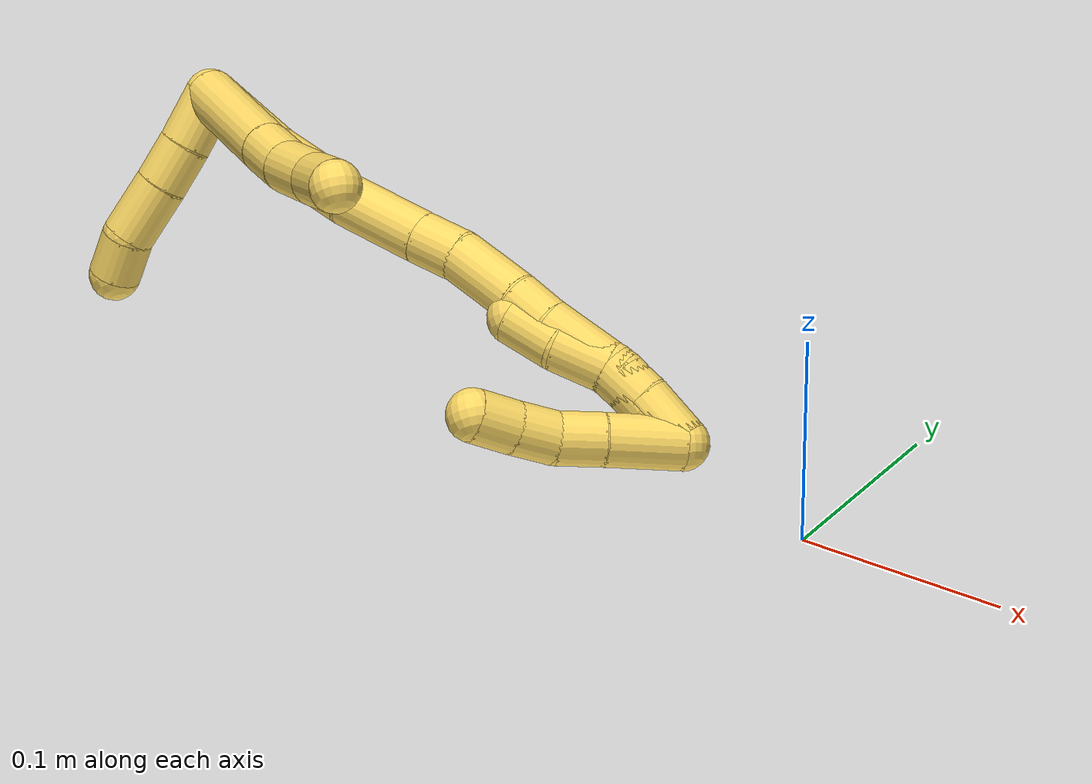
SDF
<sdf version="1.7">
 <world name="default">
  <model name="5">
   <static>0</static>
   <link name="5">
    <collision name="collision-cylinder-e_1_2_8">
     <pose>0.014176 -0.020104 -0.023606 2.43614 0.428814 1.06833</pose>
     <geometry><cylinder><radius>0.0125</radius><length>0.068188</length></cylinder></geometry>
     <surface>
      <friction><ode><mu>1.16</mu><mu2>1.16</mu2><slip1>0</slip1><slip2>0</slip2></ode></friction>
      <contact><ode><kp>1e+06</kp><kd>1</kd><max_vel>0</max_vel><min_depth>0.001</min_depth></ode></contact>
     </surface>
    </collision>
    <visual name="visual-cylinder-e_1_2_8">
     <pose>0.014176 -0.020104 -0.023606 2.43614 0.428814 1.06833</pose>
     <geometry><cylinder><radius>0.0125</radius><length>0.068188</length></cylinder></geometry>
     <material><ambient>1 0.858824 0.4 1</ambient></material>
    </visual>
    <collision name="collision-cylinder-e_2_8_9">
     <pose>0.033557 -0.047026 -0.05529 2.44063 0.45759 1.13438</pose>
     <geometry><cylinder><radius>0.0125</radius><length>0.023564</length></cylinder></geometry>
     <surface>
      <friction><ode><mu>1.16</mu><mu2>1.16</mu2><slip1>0</slip1><slip2>0</slip2></ode></friction>
      <contact><ode><kp>1e+06</kp><kd>1</kd><max_vel>0</max_vel><min_depth>0.001</min_depth></ode></contact>
     </surface>
    </collision>
    <visual name="visual-cylinder-e_2_8_9">
     <pose>0.033557 -0.047026 -0.05529 2.44063 0.45759 1.13438</pose>
     <geometry><cylinder><radius>0.0125</radius><length>0.023564</length></cylinder></geometry>
     <material><ambient>1 0.858824 0.4 1</ambient></material>
    </visual>
    <collision name="collision-cylinder-e_3_9_10">
     <pose>0.046291 -0.063395 -0.071398 2.26983 0.542852 1.07716</pose>
     <geometry><cylinder><radius>0.0125</radius><length>0.029149</length></cylinder></geometry>
     <surface>
      <friction><ode><mu>1.16</mu><mu2>1.16</mu2><slip1>0</slip1><slip2>0</slip2></ode></friction>
      <contact><ode><kp>1e+06</kp><kd>1</kd><max_vel>0</max_vel><min_depth>0.001</min_depth></ode></contact>
     </surface>
    </collision>
    <visual name="visual-cylinder-e_3_9_10">
     <pose>0.046291 -0.063395 -0.071398 2.26983 0.542852 1.07716</pose>
     <geometry><cylinder><radius>0.0125</radius><length>0.029149</length></cylinder></geometry>
     <material><ambient>1 0.858824 0.4 1</ambient></material>
    </visual>
    <collision name="collision-cylinder-e_4_10_6">
     <pose>0.059703 -0.084433 -0.086149 2.10029 0.416236 0.705711</pose>
     <geometry><cylinder><radius>0.0125</radius><length>0.029099</length></cylinder></geometry>
     <surface>
      <friction><ode><mu>1.16</mu><mu2>1.16</mu2><slip1>0</slip1><slip2>0</slip2></ode></friction>
      <contact><ode><kp>1e+06</kp><kd>1</kd><max_vel>0</max_vel><min_depth>0.001</min_depth></ode></contact>
     </surface>
    </collision>
    <visual name="visual-cylinder-e_4_10_6">
     <pose>0.059703 -0.084433 -0.086149 2.10029 0.416236 0.705711</pose>
     <geometry><cylinder><radius>0.0125</radius><length>0.029099</length></cylinder></geometry>
     <material><ambient>1 0.858824 0.4 1</ambient></material>
    </visual>
    <collision name="collision-cylinder-e_1_2_11">
     <pose>-0.009145 0.00303 -0.008924 -2.81428 -0.77032 2.36798</pose>
     <geometry><cylinder><radius>0.0125</radius><length>0.026264</length></cylinder></geometry>
     <surface>
      <friction><ode><mu>1.16</mu><mu2>1.16</mu2><slip1>0</slip1><slip2>0</slip2></ode></friction>
      <contact><ode><kp>1e+06</kp><kd>1</kd><max_vel>0</max_vel><min_depth>0.001</min_depth></ode></contact>
     </surface>
    </collision>
    <visual name="visual-cylinder-e_1_2_11">
     <pose>-0.009145 0.00303 -0.008924 -2.81428 -0.77032 2.36798</pose>
     <geometry><cylinder><radius>0.0125</radius><length>0.026264</length></cylinder></geometry>
     <material><ambient>1 0.858824 0.4 1</ambient></material>
    </visual>
    <collision name="collision-cylinder-e_2_11_12">
     <pose>-0.026451 0.009001 -0.024839 -2.7434 -0.822068 2.2745</pose>
     <geometry><cylinder><radius>0.0125</radius><length>0.022282</length></cylinder></geometry>
     <surface>
      <friction><ode><mu>1.16</mu><mu2>1.16</mu2><slip1>0</slip1><slip2>0</slip2></ode></friction>
      <contact><ode><kp>1e+06</kp><kd>1</kd><max_vel>0</max_vel><min_depth>0.001</min_depth></ode></contact>
     </surface>
    </collision>
    <visual name="visual-cylinder-e_2_11_12">
     <pose>-0.026451 0.009001 -0.024839 -2.7434 -0.822068 2.2745</pose>
     <geometry><cylinder><radius>0.0125</radius><length>0.022282</length></cylinder></geometry>
     <material><ambient>1 0.858824 0.4 1</ambient></material>
    </visual>
    <collision name="collision-cylinder-e_3_12_13">
     <pose>-0.046041 0.016363 -0.04064 -2.67644 -0.859075 2.18712</pose>
     <geometry><cylinder><radius>0.0125</radius><length>0.030185</length></cylinder></geometry>
     <surface>
      <friction><ode><mu>1.16</mu><mu2>1.16</mu2><slip1>0</slip1><slip2>0</slip2></ode></friction>
      <contact><ode><kp>1e+06</kp><kd>1</kd><max_vel>0</max_vel><min_depth>0.001</min_depth></ode></contact>
     </surface>
    </collision>
    <visual name="visual-cylinder-e_3_12_13">
     <pose>-0.046041 0.016363 -0.04064 -2.67644 -0.859075 2.18712</pose>
     <geometry><cylinder><radius>0.0125</radius><length>0.030185</length></cylinder></geometry>
     <material><ambient>1 0.858824 0.4 1</ambient></material>
    </visual>
    <collision name="collision-cylinder-e_4_13_5">
     <pose>-0.063731 0.026461 -0.055904 -2.4202 -0.629585 1.42429</pose>
     <geometry><cylinder><radius>0.0125</radius><length>0.021269</length></cylinder></geometry>
     <surface>
      <friction><ode><mu>1.16</mu><mu2>1.16</mu2><slip1>0</slip1><slip2>0</slip2></ode></friction>
      <contact><ode><kp>1e+06</kp><kd>1</kd><max_vel>0</max_vel><min_depth>0.001</min_depth></ode></contact>
     </surface>
    </collision>
    <visual name="visual-cylinder-e_4_13_5">
     <pose>-0.063731 0.026461 -0.055904 -2.4202 -0.629585 1.42429</pose>
     <geometry><cylinder><radius>0.0125</radius><length>0.021269</length></cylinder></geometry>
     <material><ambient>1 0.858824 0.4 1</ambient></material>
    </visual>
    <collision name="collision-cylinder-e_1_2_14">
     <pose>0.013061 -0.004403 -0.01944 2.91886 0.580045 2.42454</pose>
     <geometry><cylinder><radius>0.0125</radius><length>0.047661</length></cylinder></geometry>
     <surface>
      <friction><ode><mu>1.16</mu><mu2>1.16</mu2><slip1>0</slip1><slip2>0</slip2></ode></friction>
      <contact><ode><kp>1e+06</kp><kd>1</kd><max_vel>0</max_vel><min_depth>0.001</min_depth></ode></contact>
     </surface>
    </collision>
    <visual name="visual-cylinder-e_1_2_14">
     <pose>0.013061 -0.004403 -0.01944 2.91886 0.580045 2.42454</pose>
     <geometry><cylinder><radius>0.0125</radius><length>0.047661</length></cylinder></geometry>
     <material><ambient>1 0.858824 0.4 1</ambient></material>
    </visual>
    <collision name="collision-cylinder-e_2_14_15">
     <pose>0.041253 -0.012908 -0.056558 2.9136 0.695039 2.5293</pose>
     <geometry><cylinder><radius>0.0125</radius><length>0.047255</length></cylinder></geometry>
     <surface>
      <friction><ode><mu>1.16</mu><mu2>1.16</mu2><slip1>0</slip1><slip2>0</slip2></ode></friction>
      <contact><ode><kp>1e+06</kp><kd>1</kd><max_vel>0</max_vel><min_depth>0.001</min_depth></ode></contact>
     </surface>
    </collision>
    <visual name="visual-cylinder-e_2_14_15">
     <pose>0.041253 -0.012908 -0.056558 2.9136 0.695039 2.5293</pose>
     <geometry><cylinder><radius>0.0125</radius><length>0.047255</length></cylinder></geometry>
     <material><ambient>1 0.858824 0.4 1</ambient></material>
    </visual>
    <collision name="collision-cylinder-e_3_15_16">
     <pose>0.071836 -0.019881 -0.088862 2.94777 0.803364 2.69161</pose>
     <geometry><cylinder><radius>0.0125</radius><length>0.042941</length></cylinder></geometry>
     <surface>
      <friction><ode><mu>1.16</mu><mu2>1.16</mu2><slip1>0</slip1><slip2>0</slip2></ode></friction>
      <contact><ode><kp>1e+06</kp><kd>1</kd><max_vel>0</max_vel><min_depth>0.001</min_depth></ode></contact>
     </surface>
    </collision>
    <visual name="visual-cylinder-e_3_15_16">
     <pose>0.071836 -0.019881 -0.088862 2.94777 0.803364 2.69161</pose>
     <geometry><cylinder><radius>0.0125</radius><length>0.042941</length></cylinder></geometry>
     <material><ambient>1 0.858824 0.4 1</ambient></material>
    </visual>
    <collision name="collision-cylinder-e_4_16_17">
     <pose>0.095475 -0.024247 -0.110838 2.94085 0.829255 2.69171</pose>
     <geometry><cylinder><radius>0.0125</radius><length>0.022203</length></cylinder></geometry>
     <surface>
      <friction><ode><mu>1.16</mu><mu2>1.16</mu2><slip1>0</slip1><slip2>0</slip2></ode></friction>
      <contact><ode><kp>1e+06</kp><kd>1</kd><max_vel>0</max_vel><min_depth>0.001</min_depth></ode></contact>
     </surface>
    </collision>
    <visual name="visual-cylinder-e_4_16_17">
     <pose>0.095475 -0.024247 -0.110838 2.94085 0.829255 2.69171</pose>
     <geometry><cylinder><radius>0.0125</radius><length>0.022203</length></cylinder></geometry>
     <material><ambient>1 0.858824 0.4 1</ambient></material>
    </visual>
    <collision name="collision-cylinder-e_5_17_18">
     <pose>0.114435 -0.028535 -0.132164 2.94442 0.647193 2.56803</pose>
     <geometry><cylinder><radius>0.0125</radius><length>0.035735</length></cylinder></geometry>
     <surface>
      <friction><ode><mu>1.16</mu><mu2>1.16</mu2><slip1>0</slip1><slip2>0</slip2></ode></friction>
      <contact><ode><kp>1e+06</kp><kd>1</kd><max_vel>0</max_vel><min_depth>0.001</min_depth></ode></contact>
     </surface>
    </collision>
    <visual name="visual-cylinder-e_5_17_18">
     <pose>0.114435 -0.028535 -0.132164 2.94442 0.647193 2.56803</pose>
     <geometry><cylinder><radius>0.0125</radius><length>0.035735</length></cylinder></geometry>
     <material><ambient>1 0.858824 0.4 1</ambient></material>
    </visual>
    <collision name="collision-cylinder-e_6_18_19">
     <pose>0.13107 -0.031955 -0.154418 3.06584 0.614899 2.90402</pose>
     <geometry><cylinder><radius>0.0125</radius><length>0.020322</length></cylinder></geometry>
     <surface>
      <friction><ode><mu>1.16</mu><mu2>1.16</mu2><slip1>0</slip1><slip2>0</slip2></ode></friction>
      <contact><ode><kp>1e+06</kp><kd>1</kd><max_vel>0</max_vel><min_depth>0.001</min_depth></ode></contact>
     </surface>
    </collision>
    <visual name="visual-cylinder-e_6_18_19">
     <pose>0.13107 -0.031955 -0.154418 3.06584 0.614899 2.90402</pose>
     <geometry><cylinder><radius>0.0125</radius><length>0.020322</length></cylinder></geometry>
     <material><ambient>1 0.858824 0.4 1</ambient></material>
    </visual>
    <collision name="collision-cylinder-e_7_19_20">
     <pose>0.150383 -0.031416 -0.178798 -3.06924 0.694608 -2.94227</pose>
     <geometry><cylinder><radius>0.0125</radius><length>0.04203</length></cylinder></geometry>
     <surface>
      <friction><ode><mu>1.16</mu><mu2>1.16</mu2><slip1>0</slip1><slip2>0</slip2></ode></friction>
      <contact><ode><kp>1e+06</kp><kd>1</kd><max_vel>0</max_vel><min_depth>0.001</min_depth></ode></contact>
     </surface>
    </collision>
    <visual name="visual-cylinder-e_7_19_20">
     <pose>0.150383 -0.031416 -0.178798 -3.06924 0.694608 -2.94227</pose>
     <geometry><cylinder><radius>0.0125</radius><length>0.04203</length></cylinder></geometry>
     <material><ambient>1 0.858824 0.4 1</ambient></material>
    </visual>
    <collision name="collision-cylinder-e_8_20_21">
     <pose>0.168588 -0.02937 -0.203703 -3.04203 0.493073 -2.75068</pose>
     <geometry><cylinder><radius>0.0125</radius><length>0.020083</length></cylinder></geometry>
     <surface>
      <friction><ode><mu>1.16</mu><mu2>1.16</mu2><slip1>0</slip1><slip2>0</slip2></ode></friction>
      <contact><ode><kp>1e+06</kp><kd>1</kd><max_vel>0</max_vel><min_depth>0.001</min_depth></ode></contact>
     </surface>
    </collision>
    <visual name="visual-cylinder-e_8_20_21">
     <pose>0.168588 -0.02937 -0.203703 -3.04203 0.493073 -2.75068</pose>
     <geometry><cylinder><radius>0.0125</radius><length>0.020083</length></cylinder></geometry>
     <material><ambient>1 0.858824 0.4 1</ambient></material>
    </visual>
    <collision name="collision-cylinder-e_9_21_1">
     <pose>0.178498 -0.02754 -0.222042 -3.04228 0.493665 -2.75214</pose>
     <geometry><cylinder><radius>0.0125</radius><length>0.021769</length></cylinder></geometry>
     <surface>
      <friction><ode><mu>1.16</mu><mu2>1.16</mu2><slip1>0</slip1><slip2>0</slip2></ode></friction>
      <contact><ode><kp>1e+06</kp><kd>1</kd><max_vel>0</max_vel><min_depth>0.001</min_depth></ode></contact>
     </surface>
    </collision>
    <visual name="visual-cylinder-e_9_21_1">
     <pose>0.178498 -0.02754 -0.222042 -3.04228 0.493665 -2.75214</pose>
     <geometry><cylinder><radius>0.0125</radius><length>0.021769</length></cylinder></geometry>
     <material><ambient>1 0.858824 0.4 1</ambient></material>
    </visual>
    <collision name="collision-cylinder-e_1_1_22">
     <pose>0.177606 -0.027884 -0.219689 0.108438 -0.468253 -0.025886</pose>
     <geometry><cylinder><radius>0.0125</radius><length>0.026808</length></cylinder></geometry>
     <surface>
      <friction><ode><mu>1.16</mu><mu2>1.16</mu2><slip1>0</slip1><slip2>0</slip2></ode></friction>
      <contact><ode><kp>1e+06</kp><kd>1</kd><max_vel>0</max_vel><min_depth>0.001</min_depth></ode></contact>
     </surface>
    </collision>
    <visual name="visual-cylinder-e_1_1_22">
     <pose>0.177606 -0.027884 -0.219689 0.108438 -0.468253 -0.025886</pose>
     <geometry><cylinder><radius>0.0125</radius><length>0.026808</length></cylinder></geometry>
     <material><ambient>1 0.858824 0.4 1</ambient></material>
    </visual>
    <collision name="collision-cylinder-e_2_22_23">
     <pose>0.165677 -0.029994 -0.198689 0.089272 -0.571343 -0.026236</pose>
     <geometry><cylinder><radius>0.0125</radius><length>0.021745</length></cylinder></geometry>
     <surface>
      <friction><ode><mu>1.16</mu><mu2>1.16</mu2><slip1>0</slip1><slip2>0</slip2></ode></friction>
      <contact><ode><kp>1e+06</kp><kd>1</kd><max_vel>0</max_vel><min_depth>0.001</min_depth></ode></contact>
     </surface>
    </collision>
    <visual name="visual-cylinder-e_2_22_23">
     <pose>0.165677 -0.029994 -0.198689 0.089272 -0.571343 -0.026236</pose>
     <geometry><cylinder><radius>0.0125</radius><length>0.021745</length></cylinder></geometry>
     <material><ambient>1 0.858824 0.4 1</ambient></material>
    </visual>
    <collision name="collision-cylinder-e_3_23_24">
     <pose>0.149471 -0.031967 -0.181438 0.141284 -0.898337 -0.06819</pose>
     <geometry><cylinder><radius>0.0125</radius><length>0.026402</length></cylinder></geometry>
     <surface>
      <friction><ode><mu>1.16</mu><mu2>1.16</mu2><slip1>0</slip1><slip2>0</slip2></ode></friction>
      <contact><ode><kp>1e+06</kp><kd>1</kd><max_vel>0</max_vel><min_depth>0.001</min_depth></ode></contact>
     </surface>
    </collision>
    <visual name="visual-cylinder-e_3_23_24">
     <pose>0.149471 -0.031967 -0.181438 0.141284 -0.898337 -0.06819</pose>
     <geometry><cylinder><radius>0.0125</radius><length>0.026402</length></cylinder></geometry>
     <material><ambient>1 0.858824 0.4 1</ambient></material>
    </visual>
    <collision name="collision-cylinder-e_4_24_4">
     <pose>0.130539 -0.032539 -0.164218 -0.064499 -0.757542 0.025677</pose>
     <geometry><cylinder><radius>0.0125</radius><length>0.025044</length></cylinder></geometry>
     <surface>
      <friction><ode><mu>1.16</mu><mu2>1.16</mu2><slip1>0</slip1><slip2>0</slip2></ode></friction>
      <contact><ode><kp>1e+06</kp><kd>1</kd><max_vel>0</max_vel><min_depth>0.001</min_depth></ode></contact>
     </surface>
    </collision>
    <visual name="visual-cylinder-e_4_24_4">
     <pose>0.130539 -0.032539 -0.164218 -0.064499 -0.757542 0.025677</pose>
     <geometry><cylinder><radius>0.0125</radius><length>0.025044</length></cylinder></geometry>
     <material><ambient>1 0.858824 0.4 1</ambient></material>
    </visual>
    <collision name="collision-cylinder-e_1_1_25">
     <pose>0.167365 -0.034492 -0.228054 1.15104 -1.08254 -0.743751</pose>
     <geometry><cylinder><radius>0.0125</radius><length>0.036893</length></cylinder></geometry>
     <surface>
      <friction><ode><mu>1.16</mu><mu2>1.16</mu2><slip1>0</slip1><slip2>0</slip2></ode></friction>
      <contact><ode><kp>1e+06</kp><kd>1</kd><max_vel>0</max_vel><min_depth>0.001</min_depth></ode></contact>
     </surface>
    </collision>
    <visual name="visual-cylinder-e_1_1_25">
     <pose>0.167365 -0.034492 -0.228054 1.15104 -1.08254 -0.743751</pose>
     <geometry><cylinder><radius>0.0125</radius><length>0.036893</length></cylinder></geometry>
     <material><ambient>1 0.858824 0.4 1</ambient></material>
    </visual>
    <collision name="collision-cylinder-e_2_25_26">
     <pose>0.140976 -0.046526 -0.222378 1.09126 -1.1386 -0.741179</pose>
     <geometry><cylinder><radius>0.0125</radius><length>0.02224</length></cylinder></geometry>
     <surface>
      <friction><ode><mu>1.16</mu><mu2>1.16</mu2><slip1>0</slip1><slip2>0</slip2></ode></friction>
      <contact><ode><kp>1e+06</kp><kd>1</kd><max_vel>0</max_vel><min_depth>0.001</min_depth></ode></contact>
     </surface>
    </collision>
    <visual name="visual-cylinder-e_2_25_26">
     <pose>0.140976 -0.046526 -0.222378 1.09126 -1.1386 -0.741179</pose>
     <geometry><cylinder><radius>0.0125</radius><length>0.02224</length></cylinder></geometry>
     <material><ambient>1 0.858824 0.4 1</ambient></material>
    </visual>
    <collision name="collision-cylinder-e_3_26_27">
     <pose>0.123096 -0.0563 -0.216937 1.04253 -0.872497 -0.523163</pose>
     <geometry><cylinder><radius>0.0125</radius><length>0.020322</length></cylinder></geometry>
     <surface>
      <friction><ode><mu>1.16</mu><mu2>1.16</mu2><slip1>0</slip1><slip2>0</slip2></ode></friction>
      <contact><ode><kp>1e+06</kp><kd>1</kd><max_vel>0</max_vel><min_depth>0.001</min_depth></ode></contact>
     </surface>
    </collision>
    <visual name="visual-cylinder-e_3_26_27">
     <pose>0.123096 -0.0563 -0.216937 1.04253 -0.872497 -0.523163</pose>
     <geometry><cylinder><radius>0.0125</radius><length>0.020322</length></cylinder></geometry>
     <material><ambient>1 0.858824 0.4 1</ambient></material>
    </visual>
    <collision name="collision-cylinder-e_4_27_3">
     <pose>0.107915 -0.068182 -0.2102 1.06639 -0.804114 -0.491787</pose>
     <geometry><cylinder><radius>0.0125</radius><length>0.020545</length></cylinder></geometry>
     <surface>
      <friction><ode><mu>1.16</mu><mu2>1.16</mu2><slip1>0</slip1><slip2>0</slip2></ode></friction>
      <contact><ode><kp>1e+06</kp><kd>1</kd><max_vel>0</max_vel><min_depth>0.001</min_depth></ode></contact>
     </surface>
    </collision>
    <visual name="visual-cylinder-e_4_27_3">
     <pose>0.107915 -0.068182 -0.2102 1.06639 -0.804114 -0.491787</pose>
     <geometry><cylinder><radius>0.0125</radius><length>0.020545</length></cylinder></geometry>
     <material><ambient>1 0.858824 0.4 1</ambient></material>
    </visual>
    <collision name="collision-sphere-3">
     <pose>0.100517 -0.074421 -0.206756 0 -0 0</pose>
     <geometry><sphere><radius>0.0125</radius></sphere></geometry>
     <surface>
      <friction><ode><mu>1.16</mu><mu2>1.16</mu2><slip1>0</slip1><slip2>0</slip2></ode></friction>
      <contact><ode><kp>1e+06</kp><kd>1</kd><max_vel>0</max_vel><min_depth>0.001</min_depth></ode></contact>
     </surface>
    </collision>
    <visual name="visual-sphere-3">
     <pose>0.100517 -0.074421 -0.206756 0 -0 0</pose>
     <geometry><sphere><radius>0.0125</radius></sphere></geometry>
     <material><ambient>1 0.858824 0.4 1</ambient></material>
    </visual>
    <collision name="collision-sphere-27">
     <pose>0.115313 -0.061943 -0.213644 0 -0 0</pose>
     <geometry><sphere><radius>0.0125</radius></sphere></geometry>
     <surface>
      <friction><ode><mu>1.16</mu><mu2>1.16</mu2><slip1>0</slip1><slip2>0</slip2></ode></friction>
      <contact><ode><kp>1e+06</kp><kd>1</kd><max_vel>0</max_vel><min_depth>0.001</min_depth></ode></contact>
     </surface>
    </collision>
    <visual name="visual-sphere-27">
     <pose>0.115313 -0.061943 -0.213644 0 -0 0</pose>
     <geometry><sphere><radius>0.0125</radius></sphere></geometry>
     <material><ambient>1 0.858824 0.4 1</ambient></material>
    </visual>
    <collision name="collision-sphere-26">
     <pose>0.130879 -0.050658 -0.220229 0 -0 0</pose>
     <geometry><sphere><radius>0.0125</radius></sphere></geometry>
     <surface>
      <friction><ode><mu>1.16</mu><mu2>1.16</mu2><slip1>0</slip1><slip2>0</slip2></ode></friction>
      <contact><ode><kp>1e+06</kp><kd>1</kd><max_vel>0</max_vel><min_depth>0.001</min_depth></ode></contact>
     </surface>
    </collision>
    <visual name="visual-sphere-26">
     <pose>0.130879 -0.050658 -0.220229 0 -0 0</pose>
     <geometry><sphere><radius>0.0125</radius></sphere></geometry>
     <material><ambient>1 0.858824 0.4 1</ambient></material>
    </visual>
    <collision name="collision-sphere-25">
     <pose>0.151074 -0.042393 -0.224527 0 -0 0</pose>
     <geometry><sphere><radius>0.0125</radius></sphere></geometry>
     <surface>
      <friction><ode><mu>1.16</mu><mu2>1.16</mu2><slip1>0</slip1><slip2>0</slip2></ode></friction>
      <contact><ode><kp>1e+06</kp><kd>1</kd><max_vel>0</max_vel><min_depth>0.001</min_depth></ode></contact>
     </surface>
    </collision>
    <visual name="visual-sphere-25">
     <pose>0.151074 -0.042393 -0.224527 0 -0 0</pose>
     <geometry><sphere><radius>0.0125</radius></sphere></geometry>
     <material><ambient>1 0.858824 0.4 1</ambient></material>
    </visual>
    <collision name="collision-sphere-4">
     <pose>0.121934 -0.031953 -0.15514 0 -0 0</pose>
     <geometry><sphere><radius>0.0125</radius></sphere></geometry>
     <surface>
      <friction><ode><mu>1.16</mu><mu2>1.16</mu2><slip1>0</slip1><slip2>0</slip2></ode></friction>
      <contact><ode><kp>1e+06</kp><kd>1</kd><max_vel>0</max_vel><min_depth>0.001</min_depth></ode></contact>
     </surface>
    </collision>
    <visual name="visual-sphere-4">
     <pose>0.121934 -0.031953 -0.15514 0 -0 0</pose>
     <geometry><sphere><radius>0.0125</radius></sphere></geometry>
     <material><ambient>1 0.858824 0.4 1</ambient></material>
    </visual>
    <collision name="collision-sphere-24">
     <pose>0.139143 -0.033125 -0.173297 0 -0 0</pose>
     <geometry><sphere><radius>0.0125</radius></sphere></geometry>
     <surface>
      <friction><ode><mu>1.16</mu><mu2>1.16</mu2><slip1>0</slip1><slip2>0</slip2></ode></friction>
      <contact><ode><kp>1e+06</kp><kd>1</kd><max_vel>0</max_vel><min_depth>0.001</min_depth></ode></contact>
     </surface>
    </collision>
    <visual name="visual-sphere-24">
     <pose>0.139143 -0.033125 -0.173297 0 -0 0</pose>
     <geometry><sphere><radius>0.0125</radius></sphere></geometry>
     <material><ambient>1 0.858824 0.4 1</ambient></material>
    </visual>
    <collision name="collision-sphere-23">
     <pose>0.159798 -0.030809 -0.18958 0 -0 0</pose>
     <geometry><sphere><radius>0.0125</radius></sphere></geometry>
     <surface>
      <friction><ode><mu>1.16</mu><mu2>1.16</mu2><slip1>0</slip1><slip2>0</slip2></ode></friction>
      <contact><ode><kp>1e+06</kp><kd>1</kd><max_vel>0</max_vel><min_depth>0.001</min_depth></ode></contact>
     </surface>
    </collision>
    <visual name="visual-sphere-23">
     <pose>0.159798 -0.030809 -0.18958 0 -0 0</pose>
     <geometry><sphere><radius>0.0125</radius></sphere></geometry>
     <material><ambient>1 0.858824 0.4 1</ambient></material>
    </visual>
    <collision name="collision-sphere-22">
     <pose>0.171557 -0.029179 -0.207798 0 -0 0</pose>
     <geometry><sphere><radius>0.0125</radius></sphere></geometry>
     <surface>
      <friction><ode><mu>1.16</mu><mu2>1.16</mu2><slip1>0</slip1><slip2>0</slip2></ode></friction>
      <contact><ode><kp>1e+06</kp><kd>1</kd><max_vel>0</max_vel><min_depth>0.001</min_depth></ode></contact>
     </surface>
    </collision>
    <visual name="visual-sphere-22">
     <pose>0.171557 -0.029179 -0.207798 0 -0 0</pose>
     <geometry><sphere><radius>0.0125</radius></sphere></geometry>
     <material><ambient>1 0.858824 0.4 1</ambient></material>
    </visual>
    <collision name="collision-sphere-1">
     <pose>0.183656 -0.02659 -0.23158 0 -0 0</pose>
     <geometry><sphere><radius>0.0125</radius></sphere></geometry>
     <surface>
      <friction><ode><mu>1.16</mu><mu2>1.16</mu2><slip1>0</slip1><slip2>0</slip2></ode></friction>
      <contact><ode><kp>1e+06</kp><kd>1</kd><max_vel>0</max_vel><min_depth>0.001</min_depth></ode></contact>
     </surface>
    </collision>
    <visual name="visual-sphere-1">
     <pose>0.183656 -0.02659 -0.23158 0 -0 0</pose>
     <geometry><sphere><radius>0.0125</radius></sphere></geometry>
     <material><ambient>1 0.858824 0.4 1</ambient></material>
    </visual>
    <collision name="collision-sphere-21">
     <pose>0.17334 -0.02849 -0.212504 0 -0 0</pose>
     <geometry><sphere><radius>0.0125</radius></sphere></geometry>
     <surface>
      <friction><ode><mu>1.16</mu><mu2>1.16</mu2><slip1>0</slip1><slip2>0</slip2></ode></friction>
      <contact><ode><kp>1e+06</kp><kd>1</kd><max_vel>0</max_vel><min_depth>0.001</min_depth></ode></contact>
     </surface>
    </collision>
    <visual name="visual-sphere-21">
     <pose>0.17334 -0.02849 -0.212504 0 -0 0</pose>
     <geometry><sphere><radius>0.0125</radius></sphere></geometry>
     <material><ambient>1 0.858824 0.4 1</ambient></material>
    </visual>
    <collision name="collision-sphere-11">
     <pose>-0.01829 0.00606 -0.017849 0 -0 0</pose>
     <geometry><sphere><radius>0.0125</radius></sphere></geometry>
     <surface>
      <friction><ode><mu>1.16</mu><mu2>1.16</mu2><slip1>0</slip1><slip2>0</slip2></ode></friction>
      <contact><ode><kp>1e+06</kp><kd>1</kd><max_vel>0</max_vel><min_depth>0.001</min_depth></ode></contact>
     </surface>
    </collision>
    <visual name="visual-sphere-11">
     <pose>-0.01829 0.00606 -0.017849 0 -0 0</pose>
     <geometry><sphere><radius>0.0125</radius></sphere></geometry>
     <material><ambient>1 0.858824 0.4 1</ambient></material>
    </visual>
    <collision name="collision-sphere-6">
     <pose>0.065585 -0.095918 -0.092871 0 -0 0</pose>
     <geometry><sphere><radius>0.0125</radius></sphere></geometry>
     <surface>
      <friction><ode><mu>1.16</mu><mu2>1.16</mu2><slip1>0</slip1><slip2>0</slip2></ode></friction>
      <contact><ode><kp>1e+06</kp><kd>1</kd><max_vel>0</max_vel><min_depth>0.001</min_depth></ode></contact>
     </surface>
    </collision>
    <visual name="visual-sphere-6">
     <pose>0.065585 -0.095918 -0.092871 0 -0 0</pose>
     <geometry><sphere><radius>0.0125</radius></sphere></geometry>
     <material><ambient>1 0.858824 0.4 1</ambient></material>
    </visual>
    <collision name="collision-sphere-10">
     <pose>0.05382 -0.072947 -0.079428 0 -0 0</pose>
     <geometry><sphere><radius>0.0125</radius></sphere></geometry>
     <surface>
      <friction><ode><mu>1.16</mu><mu2>1.16</mu2><slip1>0</slip1><slip2>0</slip2></ode></friction>
      <contact><ode><kp>1e+06</kp><kd>1</kd><max_vel>0</max_vel><min_depth>0.001</min_depth></ode></contact>
     </surface>
    </collision>
    <visual name="visual-sphere-10">
     <pose>0.05382 -0.072947 -0.079428 0 -0 0</pose>
     <geometry><sphere><radius>0.0125</radius></sphere></geometry>
     <material><ambient>1 0.858824 0.4 1</ambient></material>
    </visual>
    <collision name="collision-sphere-9">
     <pose>0.038762 -0.053843 -0.063368 0 -0 0</pose>
     <geometry><sphere><radius>0.0125</radius></sphere></geometry>
     <surface>
      <friction><ode><mu>1.16</mu><mu2>1.16</mu2><slip1>0</slip1><slip2>0</slip2></ode></friction>
      <contact><ode><kp>1e+06</kp><kd>1</kd><max_vel>0</max_vel><min_depth>0.001</min_depth></ode></contact>
     </surface>
    </collision>
    <visual name="visual-sphere-9">
     <pose>0.038762 -0.053843 -0.063368 0 -0 0</pose>
     <geometry><sphere><radius>0.0125</radius></sphere></geometry>
     <material><ambient>1 0.858824 0.4 1</ambient></material>
    </visual>
    <collision name="collision-sphere-2">
     <geometry><sphere><radius>0.0125</radius></sphere></geometry>
     <surface>
      <friction><ode><mu>1.16</mu><mu2>1.16</mu2><slip1>0</slip1><slip2>0</slip2></ode></friction>
      <contact><ode><kp>1e+06</kp><kd>1</kd><max_vel>0</max_vel><min_depth>0.001</min_depth></ode></contact>
     </surface>
    </collision>
    <visual name="visual-sphere-2">
     <geometry><sphere><radius>0.0125</radius></sphere></geometry>
     <material><ambient>1 0.858824 0.4 1</ambient></material>
    </visual>
    <collision name="collision-sphere-19">
     <pose>0.136932 -0.032583 -0.162694 0 -0 0</pose>
     <geometry><sphere><radius>0.0125</radius></sphere></geometry>
     <surface>
      <friction><ode><mu>1.16</mu><mu2>1.16</mu2><slip1>0</slip1><slip2>0</slip2></ode></friction>
      <contact><ode><kp>1e+06</kp><kd>1</kd><max_vel>0</max_vel><min_depth>0.001</min_depth></ode></contact>
     </surface>
    </collision>
    <visual name="visual-sphere-19">
     <pose>0.136932 -0.032583 -0.162694 0 -0 0</pose>
     <geometry><sphere><radius>0.0125</radius></sphere></geometry>
     <material><ambient>1 0.858824 0.4 1</ambient></material>
    </visual>
    <collision name="collision-sphere-8">
     <pose>0.028352 -0.040209 -0.047213 0 -0 0</pose>
     <geometry><sphere><radius>0.0125</radius></sphere></geometry>
     <surface>
      <friction><ode><mu>1.16</mu><mu2>1.16</mu2><slip1>0</slip1><slip2>0</slip2></ode></friction>
      <contact><ode><kp>1e+06</kp><kd>1</kd><max_vel>0</max_vel><min_depth>0.001</min_depth></ode></contact>
     </surface>
    </collision>
    <visual name="visual-sphere-8">
     <pose>0.028352 -0.040209 -0.047213 0 -0 0</pose>
     <geometry><sphere><radius>0.0125</radius></sphere></geometry>
     <material><ambient>1 0.858824 0.4 1</ambient></material>
    </visual>
    <collision name="collision-sphere-12">
     <pose>-0.034612 0.011941 -0.03183 0 -0 0</pose>
     <geometry><sphere><radius>0.0125</radius></sphere></geometry>
     <surface>
      <friction><ode><mu>1.16</mu><mu2>1.16</mu2><slip1>0</slip1><slip2>0</slip2></ode></friction>
      <contact><ode><kp>1e+06</kp><kd>1</kd><max_vel>0</max_vel><min_depth>0.001</min_depth></ode></contact>
     </surface>
    </collision>
    <visual name="visual-sphere-12">
     <pose>-0.034612 0.011941 -0.03183 0 -0 0</pose>
     <geometry><sphere><radius>0.0125</radius></sphere></geometry>
     <material><ambient>1 0.858824 0.4 1</ambient></material>
    </visual>
    <collision name="collision-sphere-13">
     <pose>-0.057469 0.020785 -0.04945 0 -0 0</pose>
     <geometry><sphere><radius>0.0125</radius></sphere></geometry>
     <surface>
      <friction><ode><mu>1.16</mu><mu2>1.16</mu2><slip1>0</slip1><slip2>0</slip2></ode></friction>
      <contact><ode><kp>1e+06</kp><kd>1</kd><max_vel>0</max_vel><min_depth>0.001</min_depth></ode></contact>
     </surface>
    </collision>
    <visual name="visual-sphere-13">
     <pose>-0.057469 0.020785 -0.04945 0 -0 0</pose>
     <geometry><sphere><radius>0.0125</radius></sphere></geometry>
     <material><ambient>1 0.858824 0.4 1</ambient></material>
    </visual>
    <collision name="collision-sphere-5">
     <pose>-0.069993 0.032138 -0.062358 0 -0 0</pose>
     <geometry><sphere><radius>0.0125</radius></sphere></geometry>
     <surface>
      <friction><ode><mu>1.16</mu><mu2>1.16</mu2><slip1>0</slip1><slip2>0</slip2></ode></friction>
      <contact><ode><kp>1e+06</kp><kd>1</kd><max_vel>0</max_vel><min_depth>0.001</min_depth></ode></contact>
     </surface>
    </collision>
    <visual name="visual-sphere-5">
     <pose>-0.069993 0.032138 -0.062358 0 -0 0</pose>
     <geometry><sphere><radius>0.0125</radius></sphere></geometry>
     <material><ambient>1 0.858824 0.4 1</ambient></material>
    </visual>
    <collision name="collision-sphere-14">
     <pose>0.026121 -0.008806 -0.038881 0 -0 0</pose>
     <geometry><sphere><radius>0.0125</radius></sphere></geometry>
     <surface>
      <friction><ode><mu>1.16</mu><mu2>1.16</mu2><slip1>0</slip1><slip2>0</slip2></ode></friction>
      <contact><ode><kp>1e+06</kp><kd>1</kd><max_vel>0</max_vel><min_depth>0.001</min_depth></ode></contact>
     </surface>
    </collision>
    <visual name="visual-sphere-14">
     <pose>0.026121 -0.008806 -0.038881 0 -0 0</pose>
     <geometry><sphere><radius>0.0125</radius></sphere></geometry>
     <material><ambient>1 0.858824 0.4 1</ambient></material>
    </visual>
    <collision name="collision-sphere-15">
     <pose>0.056384 -0.017009 -0.074235 0 -0 0</pose>
     <geometry><sphere><radius>0.0125</radius></sphere></geometry>
     <surface>
      <friction><ode><mu>1.16</mu><mu2>1.16</mu2><slip1>0</slip1><slip2>0</slip2></ode></friction>
      <contact><ode><kp>1e+06</kp><kd>1</kd><max_vel>0</max_vel><min_depth>0.001</min_depth></ode></contact>
     </surface>
    </collision>
    <visual name="visual-sphere-15">
     <pose>0.056384 -0.017009 -0.074235 0 -0 0</pose>
     <geometry><sphere><radius>0.0125</radius></sphere></geometry>
     <material><ambient>1 0.858824 0.4 1</ambient></material>
    </visual>
    <collision name="collision-sphere-16">
     <pose>0.087288 -0.022752 -0.10349 0 -0 0</pose>
     <geometry><sphere><radius>0.0125</radius></sphere></geometry>
     <surface>
      <friction><ode><mu>1.16</mu><mu2>1.16</mu2><slip1>0</slip1><slip2>0</slip2></ode></friction>
      <contact><ode><kp>1e+06</kp><kd>1</kd><max_vel>0</max_vel><min_depth>0.001</min_depth></ode></contact>
     </surface>
    </collision>
    <visual name="visual-sphere-16">
     <pose>0.087288 -0.022752 -0.10349 0 -0 0</pose>
     <geometry><sphere><radius>0.0125</radius></sphere></geometry>
     <material><ambient>1 0.858824 0.4 1</ambient></material>
    </visual>
    <collision name="collision-sphere-17">
     <pose>0.103662 -0.025742 -0.118185 0 -0 0</pose>
     <geometry><sphere><radius>0.0125</radius></sphere></geometry>
     <surface>
      <friction><ode><mu>1.16</mu><mu2>1.16</mu2><slip1>0</slip1><slip2>0</slip2></ode></friction>
      <contact><ode><kp>1e+06</kp><kd>1</kd><max_vel>0</max_vel><min_depth>0.001</min_depth></ode></contact>
     </surface>
    </collision>
    <visual name="visual-sphere-17">
     <pose>0.103662 -0.025742 -0.118185 0 -0 0</pose>
     <geometry><sphere><radius>0.0125</radius></sphere></geometry>
     <material><ambient>1 0.858824 0.4 1</ambient></material>
    </visual>
    <collision name="collision-sphere-18">
     <pose>0.125208 -0.031327 -0.146142 0 -0 0</pose>
     <geometry><sphere><radius>0.0125</radius></sphere></geometry>
     <surface>
      <friction><ode><mu>1.16</mu><mu2>1.16</mu2><slip1>0</slip1><slip2>0</slip2></ode></friction>
      <contact><ode><kp>1e+06</kp><kd>1</kd><max_vel>0</max_vel><min_depth>0.001</min_depth></ode></contact>
     </surface>
    </collision>
    <visual name="visual-sphere-18">
     <pose>0.125208 -0.031327 -0.146142 0 -0 0</pose>
     <geometry><sphere><radius>0.0125</radius></sphere></geometry>
     <material><ambient>1 0.858824 0.4 1</ambient></material>
    </visual>
    <collision name="collision-sphere-20">
     <pose>0.163835 -0.030249 -0.194902 0 -0 0</pose>
     <geometry><sphere><radius>0.0125</radius></sphere></geometry>
     <surface>
      <friction><ode><mu>1.16</mu><mu2>1.16</mu2><slip1>0</slip1><slip2>0</slip2></ode></friction>
      <contact><ode><kp>1e+06</kp><kd>1</kd><max_vel>0</max_vel><min_depth>0.001</min_depth></ode></contact>
     </surface>
    </collision>
    <visual name="visual-sphere-20">
     <pose>0.163835 -0.030249 -0.194902 0 -0 0</pose>
     <geometry><sphere><radius>0.0125</radius></sphere></geometry>
     <material><ambient>1 0.858824 0.4 1</ambient></material>
    </visual>
    <inertial>
     <pose>0.078665 -0.026331 -0.114774 0 -0 0</pose>
     <mass>0.75</mass>
     <inertia><ixx>4e-05</ixx><ixy>0</ixy><ixz>0</ixz><iyy>9.9e-05</iyy><iyz>0</iyz><izz>-1.7e-05</izz></inertia>
    </inertial>
   </link>
   <pose>-0.361552 0.052384 0.095975 -0.78664 -0.297664 0.599683</pose>
  </model>
 </world>
</sdf>
